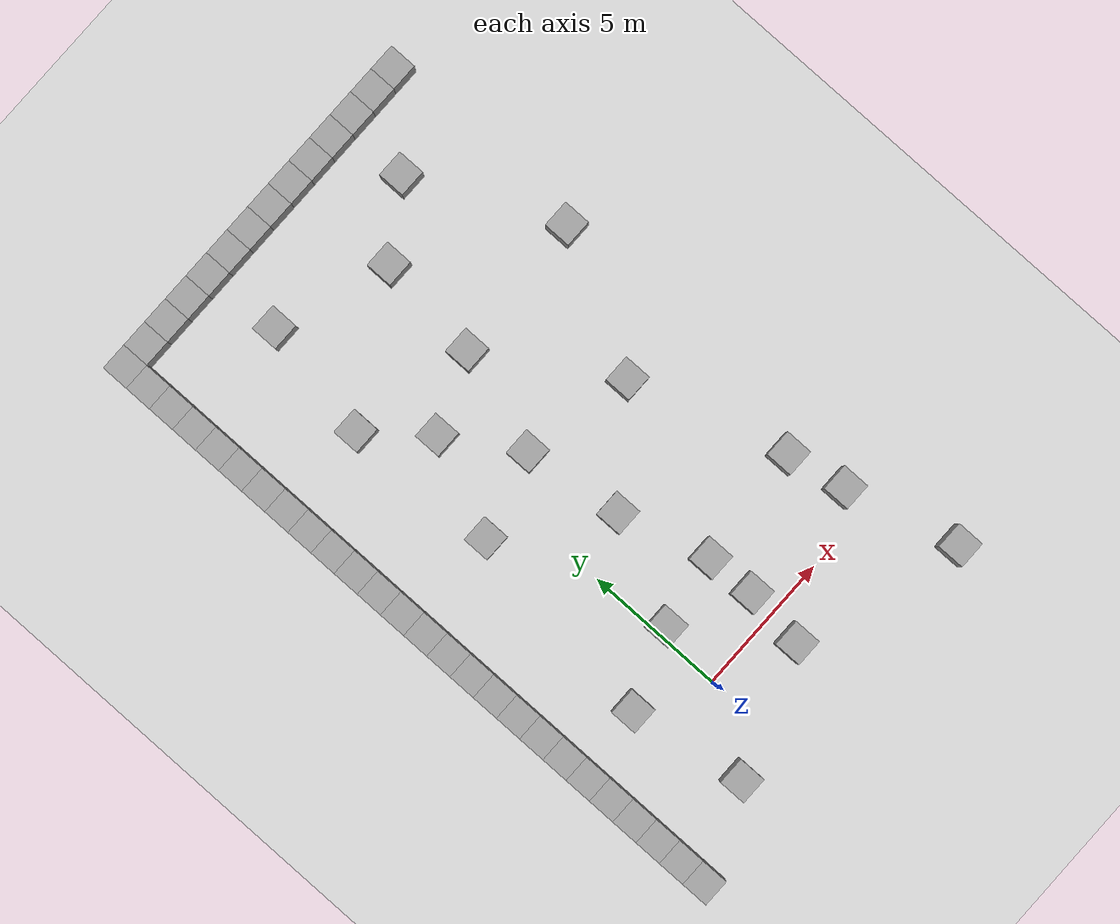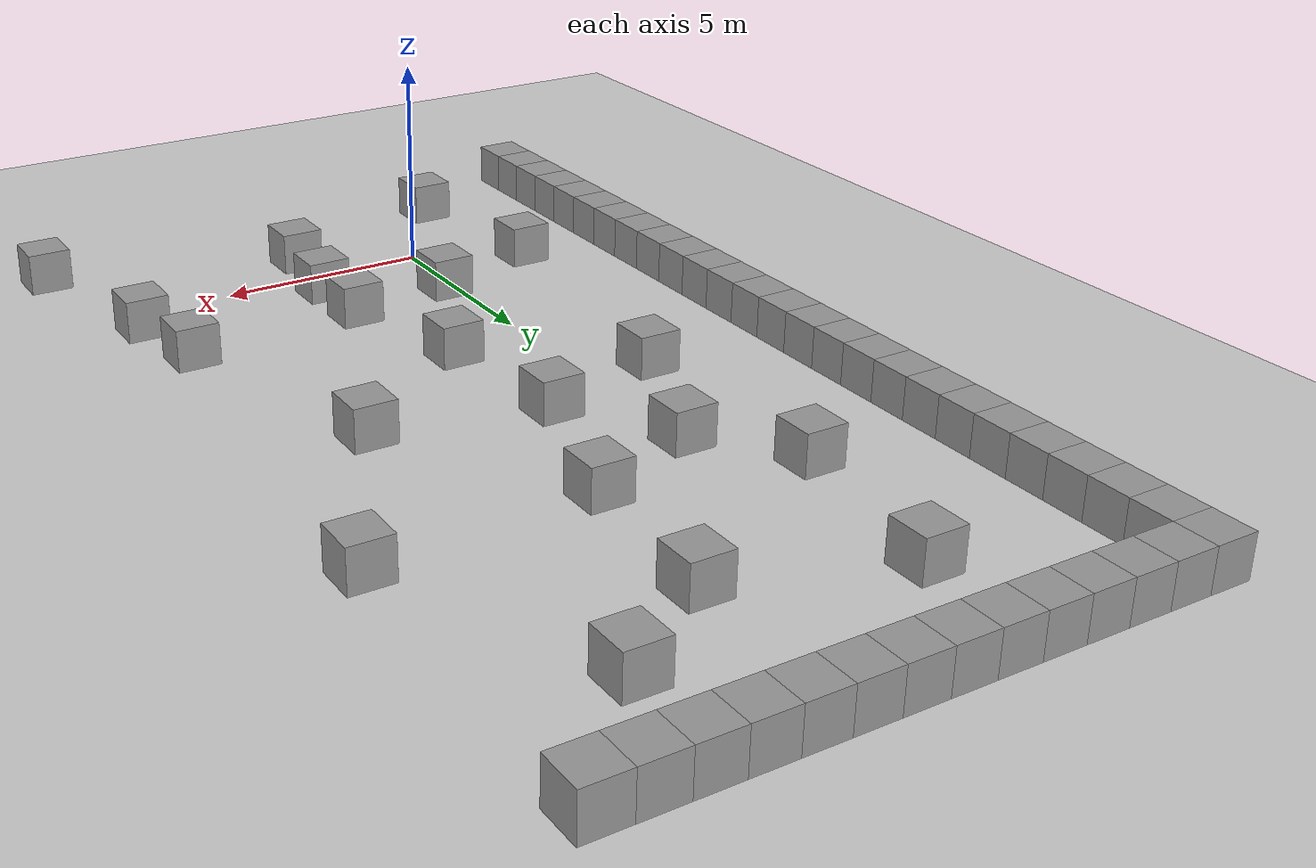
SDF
<sdf version="1.6">
 <world name="default">
  <model name="ground_plane">
   <static>1</static>
   <link name="link">
    <collision name="collision">
     <geometry><plane><normal>0 0 1</normal><size>100 100</size></plane></geometry>
     <surface><friction><ode><mu>100</mu><mu2>50</mu2></ode></friction></surface>
    </collision>
    <visual name="visual">
     <cast_shadows>0</cast_shadows>
     <geometry><plane><normal>0 0 1</normal><size>100 100</size></plane></geometry>
     <material>
      <script><uri>file://media/materials/scripts/gazebo.material</uri><name>Gazebo/Grey</name></script>
     </material>
    </visual>
    <velocity_decay><linear>0</linear><angular>0</angular></velocity_decay>
   </link>
  </model>
  <model name="unit_box_1">
   <pose>-5 5 0.5 0 0 0</pose>
   <static>1</static>
   <link name="link">
    <inertial>
     <mass>1</mass>
     <inertia><ixx>1</ixx><ixy>0</ixy><ixz>0</ixz><iyy>1</iyy><iyz>0</iyz><izz>1</izz></inertia>
    </inertial>
    <collision name="collision"><geometry><box><size>1 1 1</size></box></geometry></collision>
    <visual name="visual">
     <geometry><box><size>1 1 1</size></box></geometry>
     <material>
      <script><uri>file://media/materials/scripts/gazebo.material</uri><name>Gazebo/Grey</name></script>
     </material>
    </visual>
    <velocity_decay><linear>0</linear><angular>0</angular></velocity_decay>
   </link>
   <static>1</static>
  </model>
  <model name="unit_box_40">
   <pose>-5 4 0.5 0 0 0</pose>
   <static>1</static>
   <link name="link">
    <inertial>
     <mass>1</mass>
     <inertia><ixx>1</ixx><ixy>0</ixy><ixz>0</ixz><iyy>1</iyy><iyz>0</iyz><izz>1</izz></inertia>
    </inertial>
    <collision name="collision"><geometry><box><size>1 1 1</size></box></geometry></collision>
    <visual name="visual">
     <geometry><box><size>1 1 1</size></box></geometry>
     <material>
      <script><uri>file://media/materials/scripts/gazebo.material</uri><name>Gazebo/Grey</name></script>
     </material>
    </visual>
    <velocity_decay><linear>0</linear><angular>0</angular></velocity_decay>
   </link>
   <static>1</static>
  </model>
  <model name="unit_box_41">
   <pose>-5 3 0.5 0 0 0</pose>
   <static>1</static>
   <link name="link">
    <inertial>
     <mass>1</mass>
     <inertia><ixx>1</ixx><ixy>0</ixy><ixz>0</ixz><iyy>1</iyy><iyz>0</iyz><izz>1</izz></inertia>
    </inertial>
    <collision name="collision"><geometry><box><size>1 1 1</size></box></geometry></collision>
    <visual name="visual">
     <geometry><box><size>1 1 1</size></box></geometry>
     <material>
      <script><uri>file://media/materials/scripts/gazebo.material</uri><name>Gazebo/Grey</name></script>
     </material>
    </visual>
    <velocity_decay><linear>0</linear><angular>0</angular></velocity_decay>
   </link>
   <static>1</static>
  </model>
  <model name="unit_box_42">
   <pose>-5 2 0.5 0 0 0</pose>
   <static>1</static>
   <link name="link">
    <inertial>
     <mass>1</mass>
     <inertia><ixx>1</ixx><ixy>0</ixy><ixz>0</ixz><iyy>1</iyy><iyz>0</iyz><izz>1</izz></inertia>
    </inertial>
    <collision name="collision"><geometry><box><size>1 1 1</size></box></geometry></collision>
    <visual name="visual">
     <geometry><box><size>1 1 1</size></box></geometry>
     <material>
      <script><uri>file://media/materials/scripts/gazebo.material</uri><name>Gazebo/Grey</name></script>
     </material>
    </visual>
    <velocity_decay><linear>0</linear><angular>0</angular></velocity_decay>
   </link>
   <static>1</static>
  </model>
  <model name="unit_box_43">
   <pose>-5 1 0.5 0 0 0</pose>
   <static>1</static>
   <link name="link">
    <inertial>
     <mass>1</mass>
     <inertia><ixx>1</ixx><ixy>0</ixy><ixz>0</ixz><iyy>1</iyy><iyz>0</iyz><izz>1</izz></inertia>
    </inertial>
    <collision name="collision"><geometry><box><size>1 1 1</size></box></geometry></collision>
    <visual name="visual">
     <geometry><box><size>1 1 1</size></box></geometry>
     <material>
      <script><uri>file://media/materials/scripts/gazebo.material</uri><name>Gazebo/Grey</name></script>
     </material>
    </visual>
    <velocity_decay><linear>0</linear><angular>0</angular></velocity_decay>
   </link>
   <static>1</static>
  </model>
  <model name="unit_box_44">
   <pose>-5 0 0.5 0 0 0</pose>
   <static>1</static>
   <link name="link">
    <inertial>
     <mass>1</mass>
     <inertia><ixx>1</ixx><ixy>0</ixy><ixz>0</ixz><iyy>1</iyy><iyz>0</iyz><izz>1</izz></inertia>
    </inertial>
    <collision name="collision"><geometry><box><size>1 1 1</size></box></geometry></collision>
    <visual name="visual">
     <geometry><box><size>1 1 1</size></box></geometry>
     <material>
      <script><uri>file://media/materials/scripts/gazebo.material</uri><name>Gazebo/Grey</name></script>
     </material>
    </visual>
    <velocity_decay><linear>0</linear><angular>0</angular></velocity_decay>
   </link>
   <static>1</static>
  </model>
  <model name="unit_box_45">
   <pose>-5 -1 0.5 0 0 0</pose>
   <static>1</static>
   <link name="link">
    <inertial>
     <mass>1</mass>
     <inertia><ixx>1</ixx><ixy>0</ixy><ixz>0</ixz><iyy>1</iyy><iyz>0</iyz><izz>1</izz></inertia>
    </inertial>
    <collision name="collision"><geometry><box><size>1 1 1</size></box></geometry></collision>
    <visual name="visual">
     <geometry><box><size>1 1 1</size></box></geometry>
     <material>
      <script><uri>file://media/materials/scripts/gazebo.material</uri><name>Gazebo/Grey</name></script>
     </material>
    </visual>
    <velocity_decay><linear>0</linear><angular>0</angular></velocity_decay>
   </link>
   <static>1</static>
  </model>
  <model name="unit_box_46">
   <pose>-5 -2 0.5 0 0 0</pose>
   <static>1</static>
   <link name="link">
    <inertial>
     <mass>1</mass>
     <inertia><ixx>1</ixx><ixy>0</ixy><ixz>0</ixz><iyy>1</iyy><iyz>0</iyz><izz>1</izz></inertia>
    </inertial>
    <collision name="collision"><geometry><box><size>1 1 1</size></box></geometry></collision>
    <visual name="visual">
     <geometry><box><size>1 1 1</size></box></geometry>
     <material>
      <script><uri>file://media/materials/scripts/gazebo.material</uri><name>Gazebo/Grey</name></script>
     </material>
    </visual>
    <velocity_decay><linear>0</linear><angular>0</angular></velocity_decay>
   </link>
   <static>1</static>
  </model>
  <model name="unit_box_47">
   <pose>-5 -3 0.5 0 0 0</pose>
   <static>1</static>
   <link name="link">
    <inertial>
     <mass>1</mass>
     <inertia><ixx>1</ixx><ixy>0</ixy><ixz>0</ixz><iyy>1</iyy><iyz>0</iyz><izz>1</izz></inertia>
    </inertial>
    <collision name="collision"><geometry><box><size>1 1 1</size></box></geometry></collision>
    <visual name="visual">
     <geometry><box><size>1 1 1</size></box></geometry>
     <material>
      <script><uri>file://media/materials/scripts/gazebo.material</uri><name>Gazebo/Grey</name></script>
     </material>
    </visual>
    <velocity_decay><linear>0</linear><angular>0</angular></velocity_decay>
   </link>
   <static>1</static>
  </model>
  <model name="unit_box_61">
   <pose>-5 6 0.5 0 0 0</pose>
   <static>1</static>
   <link name="link">
    <inertial>
     <mass>1</mass>
     <inertia><ixx>1</ixx><ixy>0</ixy><ixz>0</ixz><iyy>1</iyy><iyz>0</iyz><izz>1</izz></inertia>
    </inertial>
    <collision name="collision"><geometry><box><size>1 1 1</size></box></geometry></collision>
    <visual name="visual">
     <geometry><box><size>1 1 1</size></box></geometry>
     <material>
      <script><uri>file://media/materials/scripts/gazebo.material</uri><name>Gazebo/Grey</name></script>
     </material>
    </visual>
    <velocity_decay><linear>0</linear><angular>0</angular></velocity_decay>
   </link>
   <static>1</static>
  </model>
  <model name="unit_box_67">
   <pose>-5 7 0.5 0 0 0</pose>
   <static>1</static>
   <link name="link">
    <inertial>
     <mass>1</mass>
     <inertia><ixx>1</ixx><ixy>0</ixy><ixz>0</ixz><iyy>1</iyy><iyz>0</iyz><izz>1</izz></inertia>
    </inertial>
    <collision name="collision"><geometry><box><size>1 1 1</size></box></geometry></collision>
    <visual name="visual">
     <geometry><box><size>1 1 1</size></box></geometry>
     <material>
      <script><uri>file://media/materials/scripts/gazebo.material</uri><name>Gazebo/Grey</name></script>
     </material>
    </visual>
    <velocity_decay><linear>0</linear><angular>0</angular></velocity_decay>
   </link>
   <static>1</static>
  </model>
  <model name="unit_box_68">
   <pose>-5 8 0.5 0 0 0</pose>
   <static>1</static>
   <link name="link">
    <inertial>
     <mass>1</mass>
     <inertia><ixx>1</ixx><ixy>0</ixy><ixz>0</ixz><iyy>1</iyy><iyz>0</iyz><izz>1</izz></inertia>
    </inertial>
    <collision name="collision"><geometry><box><size>1 1 1</size></box></geometry></collision>
    <visual name="visual">
     <geometry><box><size>1 1 1</size></box></geometry>
     <material>
      <script><uri>file://media/materials/scripts/gazebo.material</uri><name>Gazebo/Grey</name></script>
     </material>
    </visual>
    <velocity_decay><linear>0</linear><angular>0</angular></velocity_decay>
   </link>
   <static>1</static>
  </model>
  <model name="unit_box_69">
   <pose>-5 9 0.5 0 0 0</pose>
   <static>1</static>
   <link name="link">
    <inertial>
     <mass>1</mass>
     <inertia><ixx>1</ixx><ixy>0</ixy><ixz>0</ixz><iyy>1</iyy><iyz>0</iyz><izz>1</izz></inertia>
    </inertial>
    <collision name="collision"><geometry><box><size>1 1 1</size></box></geometry></collision>
    <visual name="visual">
     <geometry><box><size>1 1 1</size></box></geometry>
     <material>
      <script><uri>file://media/materials/scripts/gazebo.material</uri><name>Gazebo/Grey</name></script>
     </material>
    </visual>
    <velocity_decay><linear>0</linear><angular>0</angular></velocity_decay>
   </link>
   <static>1</static>
  </model>
  <model name="unit_box_72">
   <pose>-5 10 0.5 0 0 0</pose>
   <static>1</static>
   <link name="link">
    <inertial>
     <mass>1</mass>
     <inertia><ixx>1</ixx><ixy>0</ixy><ixz>0</ixz><iyy>1</iyy><iyz>0</iyz><izz>1</izz></inertia>
    </inertial>
    <collision name="collision"><geometry><box><size>1 1 1</size></box></geometry></collision>
    <visual name="visual">
     <geometry><box><size>1 1 1</size></box></geometry>
     <material>
      <script><uri>file://media/materials/scripts/gazebo.material</uri><name>Gazebo/Grey</name></script>
     </material>
    </visual>
    <velocity_decay><linear>0</linear><angular>0</angular></velocity_decay>
   </link>
   <static>1</static>
  </model>
  <model name="unit_box_73">
   <pose>-5 11 0.5 0 0 0</pose>
   <static>1</static>
   <link name="link">
    <inertial>
     <mass>1</mass>
     <inertia><ixx>1</ixx><ixy>0</ixy><ixz>0</ixz><iyy>1</iyy><iyz>0</iyz><izz>1</izz></inertia>
    </inertial>
    <collision name="collision"><geometry><box><size>1 1 1</size></box></geometry></collision>
    <visual name="visual">
     <geometry><box><size>1 1 1</size></box></geometry>
     <material>
      <script><uri>file://media/materials/scripts/gazebo.material</uri><name>Gazebo/Grey</name></script>
     </material>
    </visual>
    <velocity_decay><linear>0</linear><angular>0</angular></velocity_decay>
   </link>
   <static>1</static>
  </model>
  <model name="unit_box_74">
   <pose>-5 12 0.5 0 0 0</pose>
   <static>1</static>
   <link name="link">
    <inertial>
     <mass>1</mass>
     <inertia><ixx>1</ixx><ixy>0</ixy><ixz>0</ixz><iyy>1</iyy><iyz>0</iyz><izz>1</izz></inertia>
    </inertial>
    <collision name="collision"><geometry><box><size>1 1 1</size></box></geometry></collision>
    <visual name="visual">
     <geometry><box><size>1 1 1</size></box></geometry>
     <material>
      <script><uri>file://media/materials/scripts/gazebo.material</uri><name>Gazebo/Grey</name></script>
     </material>
    </visual>
    <velocity_decay><linear>0</linear><angular>0</angular></velocity_decay>
   </link>
   <static>1</static>
  </model>
  <model name="unit_box_75">
   <pose>-5 13 0.5 0 0 0</pose>
   <static>1</static>
   <link name="link">
    <inertial>
     <mass>1</mass>
     <inertia><ixx>1</ixx><ixy>0</ixy><ixz>0</ixz><iyy>1</iyy><iyz>0</iyz><izz>1</izz></inertia>
    </inertial>
    <collision name="collision"><geometry><box><size>1 1 1</size></box></geometry></collision>
    <visual name="visual">
     <geometry><box><size>1 1 1</size></box></geometry>
     <material>
      <script><uri>file://media/materials/scripts/gazebo.material</uri><name>Gazebo/Grey</name></script>
     </material>
    </visual>
    <velocity_decay><linear>0</linear><angular>0</angular></velocity_decay>
   </link>
   <static>1</static>
  </model>
  <model name="unit_box_76">
   <pose>-5 14 0.5 0 0 0</pose>
   <static>1</static>
   <link name="link">
    <inertial>
     <mass>1</mass>
     <inertia><ixx>1</ixx><ixy>0</ixy><ixz>0</ixz><iyy>1</iyy><iyz>0</iyz><izz>1</izz></inertia>
    </inertial>
    <collision name="collision"><geometry><box><size>1 1 1</size></box></geometry></collision>
    <visual name="visual">
     <geometry><box><size>1 1 1</size></box></geometry>
     <material>
      <script><uri>file://media/materials/scripts/gazebo.material</uri><name>Gazebo/Grey</name></script>
     </material>
    </visual>
    <velocity_decay><linear>0</linear><angular>0</angular></velocity_decay>
   </link>
   <static>1</static>
  </model>
  <model name="unit_box_77">
   <pose>-5 15 0.5 0 0 0</pose>
   <static>1</static>
   <link name="link">
    <inertial>
     <mass>1</mass>
     <inertia><ixx>1</ixx><ixy>0</ixy><ixz>0</ixz><iyy>1</iyy><iyz>0</iyz><izz>1</izz></inertia>
    </inertial>
    <collision name="collision"><geometry><box><size>1 1 1</size></box></geometry></collision>
    <visual name="visual">
     <geometry><box><size>1 1 1</size></box></geometry>
     <material>
      <script><uri>file://media/materials/scripts/gazebo.material</uri><name>Gazebo/Grey</name></script>
     </material>
    </visual>
    <velocity_decay><linear>0</linear><angular>0</angular></velocity_decay>
   </link>
   <static>1</static>
  </model>
  <model name="unit_box_78">
   <pose>-5 16 0.5 0 0 0</pose>
   <static>1</static>
   <link name="link">
    <inertial>
     <mass>1</mass>
     <inertia><ixx>1</ixx><ixy>0</ixy><ixz>0</ixz><iyy>1</iyy><iyz>0</iyz><izz>1</izz></inertia>
    </inertial>
    <collision name="collision"><geometry><box><size>1 1 1</size></box></geometry></collision>
    <visual name="visual">
     <geometry><box><size>1 1 1</size></box></geometry>
     <material>
      <script><uri>file://media/materials/scripts/gazebo.material</uri><name>Gazebo/Grey</name></script>
     </material>
    </visual>
    <velocity_decay><linear>0</linear><angular>0</angular></velocity_decay>
   </link>
   <static>1</static>
  </model>
  <model name="unit_box_79">
   <pose>-5 17 0.5 0 0 0</pose>
   <static>1</static>
   <link name="link">
    <inertial>
     <mass>1</mass>
     <inertia><ixx>1</ixx><ixy>0</ixy><ixz>0</ixz><iyy>1</iyy><iyz>0</iyz><izz>1</izz></inertia>
    </inertial>
    <collision name="collision"><geometry><box><size>1 1 1</size></box></geometry></collision>
    <visual name="visual">
     <geometry><box><size>1 1 1</size></box></geometry>
     <material>
      <script><uri>file://media/materials/scripts/gazebo.material</uri><name>Gazebo/Grey</name></script>
     </material>
    </visual>
    <velocity_decay><linear>0</linear><angular>0</angular></velocity_decay>
   </link>
   <static>1</static>
  </model>
  <model name="unit_box_80">
   <pose>-5 18 0.5 0 0 0</pose>
   <static>1</static>
   <link name="link">
    <inertial>
     <mass>1</mass>
     <inertia><ixx>1</ixx><ixy>0</ixy><ixz>0</ixz><iyy>1</iyy><iyz>0</iyz><izz>1</izz></inertia>
    </inertial>
    <collision name="collision"><geometry><box><size>1 1 1</size></box></geometry></collision>
    <visual name="visual">
     <geometry><box><size>1 1 1</size></box></geometry>
     <material>
      <script><uri>file://media/materials/scripts/gazebo.material</uri><name>Gazebo/Grey</name></script>
     </material>
    </visual>
    <velocity_decay><linear>0</linear><angular>0</angular></velocity_decay>
   </link>
   <static>1</static>
  </model>
  <model name="unit_box_96">
   <pose>-5 19 0.5 0 0 0</pose>
   <static>1</static>
   <link name="link">
    <inertial>
     <mass>1</mass>
     <inertia><ixx>1</ixx><ixy>0</ixy><ixz>0</ixz><iyy>1</iyy><iyz>0</iyz><izz>1</izz></inertia>
    </inertial>
    <collision name="collision"><geometry><box><size>1 1 1</size></box></geometry></collision>
    <visual name="visual">
     <geometry><box><size>1 1 1</size></box></geometry>
     <material>
      <script><uri>file://media/materials/scripts/gazebo.material</uri><name>Gazebo/Grey</name></script>
     </material>
    </visual>
    <velocity_decay><linear>0</linear><angular>0</angular></velocity_decay>
   </link>
   <static>1</static>
  </model>
  <model name="unit_box_97">
   <pose>-5 20 0.5 0 0 0</pose>
   <static>1</static>
   <link name="link">
    <inertial>
     <mass>1</mass>
     <inertia><ixx>1</ixx><ixy>0</ixy><ixz>0</ixz><iyy>1</iyy><iyz>0</iyz><izz>1</izz></inertia>
    </inertial>
    <collision name="collision"><geometry><box><size>1 1 1</size></box></geometry></collision>
    <visual name="visual">
     <geometry><box><size>1 1 1</size></box></geometry>
     <material>
      <script><uri>file://media/materials/scripts/gazebo.material</uri><name>Gazebo/Grey</name></script>
     </material>
    </visual>
    <velocity_decay><linear>0</linear><angular>0</angular></velocity_decay>
   </link>
   <static>1</static>
  </model>
  <model name="unit_box_98">
   <pose>-5 21 0.5 0 0 0</pose>
   <static>1</static>
   <link name="link">
    <inertial>
     <mass>1</mass>
     <inertia><ixx>1</ixx><ixy>0</ixy><ixz>0</ixz><iyy>1</iyy><iyz>0</iyz><izz>1</izz></inertia>
    </inertial>
    <collision name="collision"><geometry><box><size>1 1 1</size></box></geometry></collision>
    <visual name="visual">
     <geometry><box><size>1 1 1</size></box></geometry>
     <material>
      <script><uri>file://media/materials/scripts/gazebo.material</uri><name>Gazebo/Grey</name></script>
     </material>
    </visual>
    <velocity_decay><linear>0</linear><angular>0</angular></velocity_decay>
   </link>
   <static>1</static>
  </model>
  <model name="unit_box_99">
   <pose>-4 21 0.5 0 0 0</pose>
   <static>1</static>
   <link name="link">
    <inertial>
     <mass>1</mass>
     <inertia><ixx>1</ixx><ixy>0</ixy><ixz>0</ixz><iyy>1</iyy><iyz>0</iyz><izz>1</izz></inertia>
    </inertial>
    <collision name="collision"><geometry><box><size>1 1 1</size></box></geometry></collision>
    <visual name="visual">
     <geometry><box><size>1 1 1</size></box></geometry>
     <material>
      <script><uri>file://media/materials/scripts/gazebo.material</uri><name>Gazebo/Grey</name></script>
     </material>
    </visual>
    <velocity_decay><linear>0</linear><angular>0</angular></velocity_decay>
   </link>
   <static>1</static>
  </model>
  <model name="unit_box_100">
   <pose>-3 21 0.5 0 0 0</pose>
   <static>1</static>
   <link name="link">
    <inertial>
     <mass>1</mass>
     <inertia><ixx>1</ixx><ixy>0</ixy><ixz>0</ixz><iyy>1</iyy><iyz>0</iyz><izz>1</izz></inertia>
    </inertial>
    <collision name="collision"><geometry><box><size>1 1 1</size></box></geometry></collision>
    <visual name="visual">
     <geometry><box><size>1 1 1</size></box></geometry>
     <material>
      <script><uri>file://media/materials/scripts/gazebo.material</uri><name>Gazebo/Grey</name></script>
     </material>
    </visual>
    <velocity_decay><linear>0</linear><angular>0</angular></velocity_decay>
   </link>
   <static>1</static>
  </model>
  <model name="unit_box_101">
   <pose>-2 21 0.5 0 0 0</pose>
   <static>1</static>
   <link name="link">
    <inertial>
     <mass>1</mass>
     <inertia><ixx>1</ixx><ixy>0</ixy><ixz>0</ixz><iyy>1</iyy><iyz>0</iyz><izz>1</izz></inertia>
    </inertial>
    <collision name="collision"><geometry><box><size>1 1 1</size></box></geometry></collision>
    <visual name="visual">
     <geometry><box><size>1 1 1</size></box></geometry>
     <material>
      <script><uri>file://media/materials/scripts/gazebo.material</uri><name>Gazebo/Grey</name></script>
     </material>
    </visual>
    <velocity_decay><linear>0</linear><angular>0</angular></velocity_decay>
   </link>
   <static>1</static>
  </model>
  <model name="unit_box_102">
   <pose>-1 21 0.5 0 0 0</pose>
   <static>1</static>
   <link name="link">
    <inertial>
     <mass>1</mass>
     <inertia><ixx>1</ixx><ixy>0</ixy><ixz>0</ixz><iyy>1</iyy><iyz>0</iyz><izz>1</izz></inertia>
    </inertial>
    <collision name="collision"><geometry><box><size>1 1 1</size></box></geometry></collision>
    <visual name="visual">
     <geometry><box><size>1 1 1</size></box></geometry>
     <material>
      <script><uri>file://media/materials/scripts/gazebo.material</uri><name>Gazebo/Grey</name></script>
     </material>
    </visual>
    <velocity_decay><linear>0</linear><angular>0</angular></velocity_decay>
   </link>
   <static>1</static>
  </model>
  <model name="unit_box_103">
   <pose>0 21 0.5 0 0 0</pose>
   <static>1</static>
   <link name="link">
    <inertial>
     <mass>1</mass>
     <inertia><ixx>1</ixx><ixy>0</ixy><ixz>0</ixz><iyy>1</iyy><iyz>0</iyz><izz>1</izz></inertia>
    </inertial>
    <collision name="collision"><geometry><box><size>1 1 1</size></box></geometry></collision>
    <visual name="visual">
     <geometry><box><size>1 1 1</size></box></geometry>
     <material>
      <script><uri>file://media/materials/scripts/gazebo.material</uri><name>Gazebo/Grey</name></script>
     </material>
    </visual>
    <velocity_decay><linear>0</linear><angular>0</angular></velocity_decay>
   </link>
   <static>1</static>
  </model>
  <model name="unit_box_104">
   <pose>1 21 0.5 0 0 0</pose>
   <static>1</static>
   <link name="link">
    <inertial>
     <mass>1</mass>
     <inertia><ixx>1</ixx><ixy>0</ixy><ixz>0</ixz><iyy>1</iyy><iyz>0</iyz><izz>1</izz></inertia>
    </inertial>
    <collision name="collision"><geometry><box><size>1 1 1</size></box></geometry></collision>
    <visual name="visual">
     <geometry><box><size>1 1 1</size></box></geometry>
     <material>
      <script><uri>file://media/materials/scripts/gazebo.material</uri><name>Gazebo/Grey</name></script>
     </material>
    </visual>
    <velocity_decay><linear>0</linear><angular>0</angular></velocity_decay>
   </link>
   <static>1</static>
  </model>
  <model name="unit_box_105">
   <pose>2 21 0.5 0 0 0</pose>
   <static>1</static>
   <link name="link">
    <inertial>
     <mass>1</mass>
     <inertia><ixx>1</ixx><ixy>0</ixy><ixz>0</ixz><iyy>1</iyy><iyz>0</iyz><izz>1</izz></inertia>
    </inertial>
    <collision name="collision"><geometry><box><size>1 1 1</size></box></geometry></collision>
    <visual name="visual">
     <geometry><box><size>1 1 1</size></box></geometry>
     <material>
      <script><uri>file://media/materials/scripts/gazebo.material</uri><name>Gazebo/Grey</name></script>
     </material>
    </visual>
    <velocity_decay><linear>0</linear><angular>0</angular></velocity_decay>
   </link>
   <static>1</static>
  </model>
  <model name="unit_box_106">
   <pose>3 21 0.5 0 0 0</pose>
   <static>1</static>
   <link name="link">
    <inertial>
     <mass>1</mass>
     <inertia><ixx>1</ixx><ixy>0</ixy><ixz>0</ixz><iyy>1</iyy><iyz>0</iyz><izz>1</izz></inertia>
    </inertial>
    <collision name="collision"><geometry><box><size>1 1 1</size></box></geometry></collision>
    <visual name="visual">
     <geometry><box><size>1 1 1</size></box></geometry>
     <material>
      <script><uri>file://media/materials/scripts/gazebo.material</uri><name>Gazebo/Grey</name></script>
     </material>
    </visual>
    <velocity_decay><linear>0</linear><angular>0</angular></velocity_decay>
   </link>
   <static>1</static>
  </model>
  <model name="unit_box_107">
   <pose>4 21 0.5 0 0 0</pose>
   <static>1</static>
   <link name="link">
    <inertial>
     <mass>1</mass>
     <inertia><ixx>1</ixx><ixy>0</ixy><ixz>0</ixz><iyy>1</iyy><iyz>0</iyz><izz>1</izz></inertia>
    </inertial>
    <collision name="collision"><geometry><box><size>1 1 1</size></box></geometry></collision>
    <visual name="visual">
     <geometry><box><size>1 1 1</size></box></geometry>
     <material>
      <script><uri>file://media/materials/scripts/gazebo.material</uri><name>Gazebo/Grey</name></script>
     </material>
    </visual>
    <velocity_decay><linear>0</linear><angular>0</angular></velocity_decay>
   </link>
   <static>1</static>
  </model>
  <model name="unit_box_108">
   <pose>5 21 0.5 0 0 0</pose>
   <static>1</static>
   <link name="link">
    <inertial>
     <mass>1</mass>
     <inertia><ixx>1</ixx><ixy>0</ixy><ixz>0</ixz><iyy>1</iyy><iyz>0</iyz><izz>1</izz></inertia>
    </inertial>
    <collision name="collision"><geometry><box><size>1 1 1</size></box></geometry></collision>
    <visual name="visual">
     <geometry><box><size>1 1 1</size></box></geometry>
     <material>
      <script><uri>file://media/materials/scripts/gazebo.material</uri><name>Gazebo/Grey</name></script>
     </material>
    </visual>
    <velocity_decay><linear>0</linear><angular>0</angular></velocity_decay>
   </link>
   <static>1</static>
  </model>
  <model name="unit_box_109">
   <pose>6 21 0.5 0 0 0</pose>
   <static>1</static>
   <link name="link">
    <inertial>
     <mass>1</mass>
     <inertia><ixx>1</ixx><ixy>0</ixy><ixz>0</ixz><iyy>1</iyy><iyz>0</iyz><izz>1</izz></inertia>
    </inertial>
    <collision name="collision"><geometry><box><size>1 1 1</size></box></geometry></collision>
    <visual name="visual">
     <geometry><box><size>1 1 1</size></box></geometry>
     <material>
      <script><uri>file://media/materials/scripts/gazebo.material</uri><name>Gazebo/Grey</name></script>
     </material>
    </visual>
    <velocity_decay><linear>0</linear><angular>0</angular></velocity_decay>
   </link>
   <static>1</static>
  </model>
  <model name="unit_box_110">
   <pose>7 21 0.5 0 0 0</pose>
   <static>1</static>
   <link name="link">
    <inertial>
     <mass>1</mass>
     <inertia><ixx>1</ixx><ixy>0</ixy><ixz>0</ixz><iyy>1</iyy><iyz>0</iyz><izz>1</izz></inertia>
    </inertial>
    <collision name="collision"><geometry><box><size>1 1 1</size></box></geometry></collision>
    <visual name="visual">
     <geometry><box><size>1 1 1</size></box></geometry>
     <material>
      <script><uri>file://media/materials/scripts/gazebo.material</uri><name>Gazebo/Grey</name></script>
     </material>
    </visual>
    <velocity_decay><linear>0</linear><angular>0</angular></velocity_decay>
   </link>
   <static>1</static>
  </model>
  <model name="unit_box_111">
   <pose>8 21 0.5 0 0 0</pose>
   <static>1</static>
   <link name="link">
    <inertial>
     <mass>1</mass>
     <inertia><ixx>1</ixx><ixy>0</ixy><ixz>0</ixz><iyy>1</iyy><iyz>0</iyz><izz>1</izz></inertia>
    </inertial>
    <collision name="collision"><geometry><box><size>1 1 1</size></box></geometry></collision>
    <visual name="visual">
     <geometry><box><size>1 1 1</size></box></geometry>
     <material>
      <script><uri>file://media/materials/scripts/gazebo.material</uri><name>Gazebo/Grey</name></script>
     </material>
    </visual>
    <velocity_decay><linear>0</linear><angular>0</angular></velocity_decay>
   </link>
   <static>1</static>
  </model>
  <model name="unit_box_241">
   <pose>-5 -4 0.5 0 0 0</pose>
   <static>1</static>
   <link name="link">
    <inertial>
     <mass>1</mass>
     <inertia><ixx>1</ixx><ixy>0</ixy><ixz>0</ixz><iyy>1</iyy><iyz>0</iyz><izz>1</izz></inertia>
    </inertial>
    <collision name="collision"><geometry><box><size>1 1 1</size></box></geometry></collision>
    <visual name="visual">
     <geometry><box><size>1 1 1</size></box></geometry>
     <material>
      <script><uri>file://media/materials/scripts/gazebo.material</uri><name>Gazebo/Grey</name></script>
     </material>
    </visual>
    <velocity_decay><linear>0</linear><angular>0</angular></velocity_decay>
   </link>
   <static>1</static>
  </model>
  <model name="unit_box_4_0_clone_1">
   <pose>2.75 -1.15 0.5 0 0 0</pose>
   <link name="link">
    <inertial>
     <mass>1</mass>
     <inertia><ixx>1</ixx><ixy>0</ixy><ixz>0</ixz><iyy>1</iyy><iyz>0</iyz><izz>1</izz></inertia>
    </inertial>
    <collision name="collision"><geometry><box><size>1 1 1</size></box></geometry></collision>
    <visual name="visual">
     <geometry><box><size>1 1 1</size></box></geometry>
     <material>
      <script><uri>file://media/materials/scripts/gazebo.material</uri><name>Gazebo/Grey</name></script>
     </material>
    </visual>
    <velocity_decay><linear>0</linear><angular>0</angular></velocity_decay>
   </link>
   <static>1</static>
  </model>
  <model name="unit_box_4_0_clone_2">
   <pose>2.05 5.95 0.5 0 0 0</pose>
   <link name="link">
    <inertial>
     <mass>1</mass>
     <inertia><ixx>1</ixx><ixy>0</ixy><ixz>0</ixz><iyy>1</iyy><iyz>0</iyz><izz>1</izz></inertia>
    </inertial>
    <collision name="collision"><geometry><box><size>1 1 1</size></box></geometry></collision>
    <visual name="visual">
     <geometry><box><size>1 1 1</size></box></geometry>
     <material>
      <script><uri>file://media/materials/scripts/gazebo.material</uri><name>Gazebo/Grey</name></script>
     </material>
    </visual>
    <velocity_decay><linear>0</linear><angular>0</angular></velocity_decay>
   </link>
   <static>1</static>
  </model>
  <model name="unit_box_4_0_clone_3">
   <pose>-1.4 8.6 0.5 0 0 0</pose>
   <link name="link">
    <inertial>
     <mass>1</mass>
     <inertia><ixx>1</ixx><ixy>0</ixy><ixz>0</ixz><iyy>1</iyy><iyz>0</iyz><izz>1</izz></inertia>
    </inertial>
    <collision name="collision"><geometry><box><size>1 1 1</size></box></geometry></collision>
    <visual name="visual">
     <geometry><box><size>1 1 1</size></box></geometry>
     <material>
      <script><uri>file://media/materials/scripts/gazebo.material</uri><name>Gazebo/Grey</name></script>
     </material>
    </visual>
    <velocity_decay><linear>0</linear><angular>0</angular></velocity_decay>
   </link>
   <static>1</static>
  </model>
  <model name="unit_box_4_0_clone_4">
   <pose>-2.4 1.35 0.5 0 0 0</pose>
   <link name="link">
    <inertial>
     <mass>1</mass>
     <inertia><ixx>1</ixx><ixy>0</ixy><ixz>0</ixz><iyy>1</iyy><iyz>0</iyz><izz>1</izz></inertia>
    </inertial>
    <collision name="collision"><geometry><box><size>1 1 1</size></box></geometry></collision>
    <visual name="visual">
     <geometry><box><size>1 1 1</size></box></geometry>
     <material>
      <script><uri>file://media/materials/scripts/gazebo.material</uri><name>Gazebo/Grey</name></script>
     </material>
    </visual>
    <velocity_decay><linear>0</linear><angular>0</angular></velocity_decay>
   </link>
   <static>1</static>
  </model>
  <model name="unit_box_4_0_clone_5">
   <pose>-1.75 -2.75 0.5 0 0 0</pose>
   <link name="link">
    <inertial>
     <mass>1</mass>
     <inertia><ixx>1</ixx><ixy>0</ixy><ixz>0</ixz><iyy>1</iyy><iyz>0</iyz><izz>1</izz></inertia>
    </inertial>
    <collision name="collision"><geometry><box><size>1 1 1</size></box></geometry></collision>
    <visual name="visual">
     <geometry><box><size>1 1 1</size></box></geometry>
     <material>
      <script><uri>file://media/materials/scripts/gazebo.material</uri><name>Gazebo/Grey</name></script>
     </material>
    </visual>
    <velocity_decay><linear>0</linear><angular>0</angular></velocity_decay>
   </link>
   <static>1</static>
  </model>
  <model name="unit_box_4_0_clone_6">
   <pose>-1.6 14.05 0.5 0 0 0</pose>
   <link name="link">
    <inertial>
     <mass>1</mass>
     <inertia><ixx>1</ixx><ixy>0</ixy><ixz>0</ixz><iyy>1</iyy><iyz>0</iyz><izz>1</izz></inertia>
    </inertial>
    <collision name="collision"><geometry><box><size>1 1 1</size></box></geometry></collision>
    <visual name="visual">
     <geometry><box><size>1 1 1</size></box></geometry>
     <material>
      <script><uri>file://media/materials/scripts/gazebo.material</uri><name>Gazebo/Grey</name></script>
     </material>
    </visual>
    <velocity_decay><linear>0</linear><angular>0</angular></velocity_decay>
   </link>
   <static>1</static>
  </model>
  <model name="unit_box_4_0_clone_7">
   <pose>-0.85 18.25 0.5 0 0 0</pose>
   <link name="link">
    <inertial>
     <mass>1</mass>
     <inertia><ixx>1</ixx><ixy>0</ixy><ixz>0</ixz><iyy>1</iyy><iyz>0</iyz><izz>1</izz></inertia>
    </inertial>
    <collision name="collision"><geometry><box><size>1 1 1</size></box></geometry></collision>
    <visual name="visual">
     <geometry><box><size>1 1 1</size></box></geometry>
     <material>
      <script><uri>file://media/materials/scripts/gazebo.material</uri><name>Gazebo/Grey</name></script>
     </material>
    </visual>
    <velocity_decay><linear>0</linear><angular>0</angular></velocity_decay>
   </link>
   <static>1</static>
  </model>
  <model name="unit_box_4_0_clone_8">
   <pose>3.15 16.85 0.5 0 0 0</pose>
   <link name="link">
    <inertial>
     <mass>1</mass>
     <inertia><ixx>1</ixx><ixy>0</ixy><ixz>0</ixz><iyy>1</iyy><iyz>0</iyz><izz>1</izz></inertia>
    </inertial>
    <collision name="collision"><geometry><box><size>1 1 1</size></box></geometry></collision>
    <visual name="visual">
     <geometry><box><size>1 1 1</size></box></geometry>
     <material>
      <script><uri>file://media/materials/scripts/gazebo.material</uri><name>Gazebo/Grey</name></script>
     </material>
    </visual>
    <velocity_decay><linear>0</linear><angular>0</angular></velocity_decay>
   </link>
   <static>1</static>
  </model>
  <model name="unit_box_4_0_clone_9">
   <pose>2.75 13.1 0.5 0 0 0</pose>
   <link name="link">
    <inertial>
     <mass>1</mass>
     <inertia><ixx>1</ixx><ixy>0</ixy><ixz>0</ixz><iyy>1</iyy><iyz>0</iyz><izz>1</izz></inertia>
    </inertial>
    <collision name="collision"><geometry><box><size>1 1 1</size></box></geometry></collision>
    <visual name="visual">
     <geometry><box><size>1 1 1</size></box></geometry>
     <material>
      <script><uri>file://media/materials/scripts/gazebo.material</uri><name>Gazebo/Grey</name></script>
     </material>
    </visual>
    <velocity_decay><linear>0</linear><angular>0</angular></velocity_decay>
   </link>
   <static>1</static>
  </model>
  <model name="unit_box_4_0_clone_10">
   <pose>7.95 13.4 0.5 0 0 0</pose>
   <link name="link">
    <inertial>
     <mass>1</mass>
     <inertia><ixx>1</ixx><ixy>0</ixy><ixz>0</ixz><iyy>1</iyy><iyz>0</iyz><izz>1</izz></inertia>
    </inertial>
    <collision name="collision"><geometry><box><size>1 1 1</size></box></geometry></collision>
    <visual name="visual">
     <geometry><box><size>1 1 1</size></box></geometry>
     <material>
      <script><uri>file://media/materials/scripts/gazebo.material</uri><name>Gazebo/Grey</name></script>
     </material>
    </visual>
    <velocity_decay><linear>0</linear><angular>0</angular></velocity_decay>
   </link>
   <static>1</static>
  </model>
  <model name="unit_box_4_0_clone_18_clone_2">
   <pose>5.5 8.6 0.5 0 0 0</pose>
   <link name="link">
    <inertial>
     <mass>1</mass>
     <inertia><ixx>1</ixx><ixy>0</ixy><ixz>0</ixz><iyy>1</iyy><iyz>0</iyz><izz>1</izz></inertia>
    </inertial>
    <collision name="collision"><geometry><box><size>1 1 1</size></box></geometry></collision>
    <visual name="visual">
     <geometry><box><size>1 1 1</size></box></geometry>
     <material>
      <script><uri>file://media/materials/scripts/gazebo.material</uri><name>Gazebo/Grey</name></script>
     </material>
    </visual>
    <velocity_decay><linear>0</linear><angular>0</angular></velocity_decay>
   </link>
   <static>1</static>
  </model>
  <model name="unit_box_4_0_clone_18_clone_3">
   <pose>1.6 9.45 0.5 0 0 0</pose>
   <link name="link">
    <inertial>
     <mass>1</mass>
     <inertia><ixx>1</ixx><ixy>0</ixy><ixz>0</ixz><iyy>1</iyy><iyz>0</iyz><izz>1</izz></inertia>
    </inertial>
    <collision name="collision"><geometry><box><size>1 1 1</size></box></geometry></collision>
    <visual name="visual">
     <geometry><box><size>1 1 1</size></box></geometry>
     <material>
      <script><uri>file://media/materials/scripts/gazebo.material</uri><name>Gazebo/Grey</name></script>
     </material>
    </visual>
    <velocity_decay><linear>0</linear><angular>0</angular></velocity_decay>
   </link>
   <static>1</static>
  </model>
  <model name="unit_box_4_0_clone_18_clone_4">
   <pose>7.55 1 0.5 0 0 0</pose>
   <link name="link">
    <inertial>
     <mass>1</mass>
     <inertia><ixx>1</ixx><ixy>0</ixy><ixz>0</ixz><iyy>1</iyy><iyz>0</iyz><izz>1</izz></inertia>
    </inertial>
    <collision name="collision"><geometry><box><size>1 1 1</size></box></geometry></collision>
    <visual name="visual">
     <geometry><box><size>1 1 1</size></box></geometry>
     <material>
      <script><uri>file://media/materials/scripts/gazebo.material</uri><name>Gazebo/Grey</name></script>
     </material>
    </visual>
    <velocity_decay><linear>0</linear><angular>0</angular></velocity_decay>
   </link>
   <static>1</static>
  </model>
  <model name="unit_box_4_0_clone_18_clone_5">
   <pose>8.6 -3 0.5 0 0 0</pose>
   <link name="link">
    <inertial>
     <mass>1</mass>
     <inertia><ixx>1</ixx><ixy>0</ixy><ixz>0</ixz><iyy>1</iyy><iyz>0</iyz><izz>1</izz></inertia>
    </inertial>
    <collision name="collision"><geometry><box><size>1 1 1</size></box></geometry></collision>
    <visual name="visual">
     <geometry><box><size>1 1 1</size></box></geometry>
     <material>
      <script><uri>file://media/materials/scripts/gazebo.material</uri><name>Gazebo/Grey</name></script>
     </material>
    </visual>
    <velocity_decay><linear>0</linear><angular>0</angular></velocity_decay>
   </link>
   <static>1</static>
  </model>
  <model name="unit_box_4_0_clone_18_clone_14">
   <pose>0.05 12 0.5 0 0 0</pose>
   <link name="link">
    <inertial>
     <mass>1</mass>
     <inertia><ixx>1</ixx><ixy>0</ixy><ixz>0</ixz><iyy>1</iyy><iyz>0</iyz><izz>1</izz></inertia>
    </inertial>
    <collision name="collision"><geometry><box><size>1 1 1</size></box></geometry></collision>
    <visual name="visual">
     <geometry><box><size>1 1 1</size></box></geometry>
     <material>
      <script><uri>file://media/materials/scripts/gazebo.material</uri><name>Gazebo/Grey</name></script>
     </material>
    </visual>
    <velocity_decay><linear>0</linear><angular>0</angular></velocity_decay>
   </link>
   <static>1</static>
  </model>
  <model name="unit_box_4_0_clone_18_clone_15">
   <pose>5.6 18.5 0.5 0 0 0</pose>
   <link name="link">
    <inertial>
     <mass>1</mass>
     <inertia><ixx>1</ixx><ixy>0</ixy><ixz>0</ixz><iyy>1</iyy><iyz>0</iyz><izz>1</izz></inertia>
    </inertial>
    <collision name="collision"><geometry><box><size>1 1 1</size></box></geometry></collision>
    <visual name="visual">
     <geometry><box><size>1 1 1</size></box></geometry>
     <material>
      <script><uri>file://media/materials/scripts/gazebo.material</uri><name>Gazebo/Grey</name></script>
     </material>
    </visual>
    <velocity_decay><linear>0</linear><angular>0</angular></velocity_decay>
   </link>
   <static>1</static>
  </model>
  <model name="unit_box_4_0_clone_18_clone_21">
   <pose>7.15 3.1 0.5 0 0 0</pose>
   <link name="link">
    <inertial>
     <mass>1</mass>
     <inertia><ixx>1</ixx><ixy>0</ixy><ixz>0</ixz><iyy>1</iyy><iyz>0</iyz><izz>1</izz></inertia>
    </inertial>
    <collision name="collision"><geometry><box><size>1 1 1</size></box></geometry></collision>
    <visual name="visual">
     <geometry><box><size>1 1 1</size></box></geometry>
     <material>
      <script><uri>file://media/materials/scripts/gazebo.material</uri><name>Gazebo/Grey</name></script>
     </material>
    </visual>
    <velocity_decay><linear>0</linear><angular>0</angular></velocity_decay>
   </link>
   <static>1</static>
  </model>
  <model name="unit_box_4_0_clone_18_clone_23">
   <pose>2.95 2.75 0.5 0 0 0</pose>
   <link name="link">
    <inertial>
     <mass>1</mass>
     <inertia><ixx>1</ixx><ixy>0</ixy><ixz>0</ixz><iyy>1</iyy><iyz>0</iyz><izz>1</izz></inertia>
    </inertial>
    <collision name="collision"><geometry><box><size>1 1 1</size></box></geometry></collision>
    <visual name="visual">
     <geometry><box><size>1 1 1</size></box></geometry>
     <material>
      <script><uri>file://media/materials/scripts/gazebo.material</uri><name>Gazebo/Grey</name></script>
     </material>
    </visual>
    <velocity_decay><linear>0</linear><angular>0</angular></velocity_decay>
   </link>
   <static>1</static>
  </model>
  <model name="unit_box_4_0_clone_18_clone_24">
   <pose>3 1 0.5 0 0 0</pose>
   <link name="link">
    <inertial>
     <mass>1</mass>
     <inertia><ixx>1</ixx><ixy>0</ixy><ixz>0</ixz><iyy>1</iyy><iyz>0</iyz><izz>1</izz></inertia>
    </inertial>
    <collision name="collision"><geometry><box><size>1 1 1</size></box></geometry></collision>
    <visual name="visual">
     <geometry><box><size>1 1 1</size></box></geometry>
     <material>
      <script><uri>file://media/materials/scripts/gazebo.material</uri><name>Gazebo/Grey</name></script>
     </material>
    </visual>
    <velocity_decay><linear>0</linear><angular>0</angular></velocity_decay>
   </link>
   <static>1</static>
  </model>
  <model name="unit_box_4_0_clone_18_clone_25">
   <pose>0.35 2.35 0.5 0 0 0</pose>
   <link name="link">
    <inertial>
     <mass>1</mass>
     <inertia><ixx>1</ixx><ixy>0</ixy><ixz>0</ixz><iyy>1</iyy><iyz>0</iyz><izz>1</izz></inertia>
    </inertial>
    <collision name="collision"><geometry><box><size>1 1 1</size></box></geometry></collision>
    <visual name="visual">
     <geometry><box><size>1 1 1</size></box></geometry>
     <material>
      <script><uri>file://media/materials/scripts/gazebo.material</uri><name>Gazebo/Grey</name></script>
     </material>
    </visual>
    <velocity_decay><linear>0</linear><angular>0</angular></velocity_decay>
   </link>
   <static>1</static>
  </model>
 </world>
</sdf>
